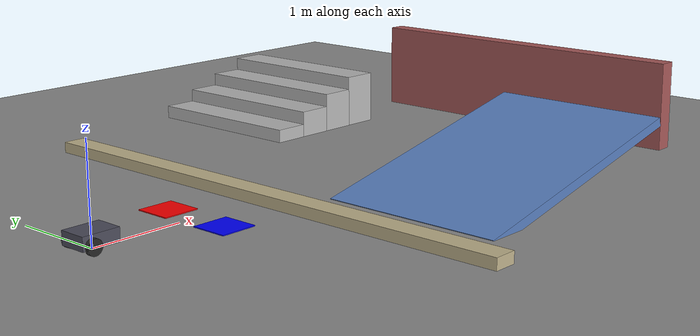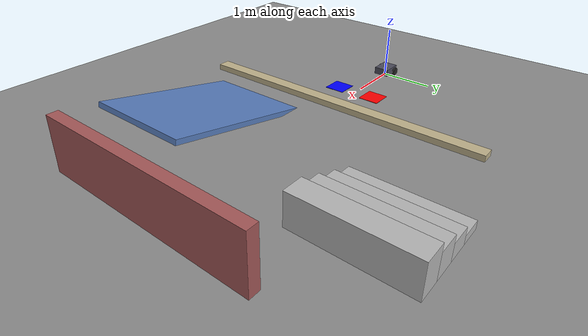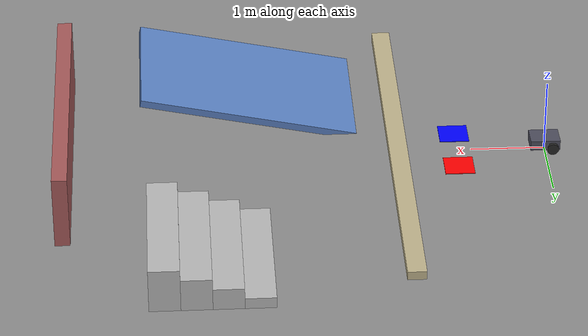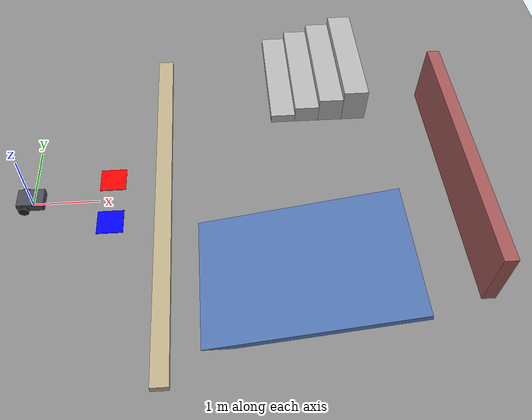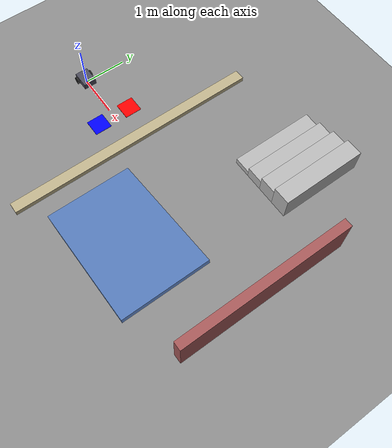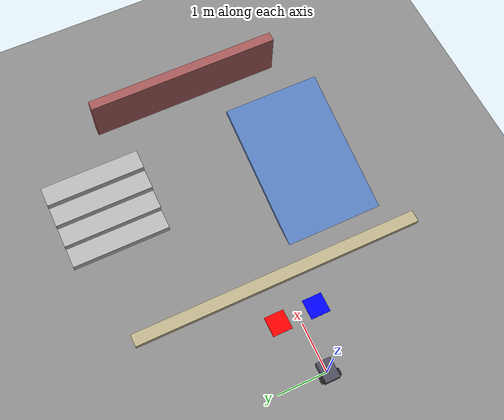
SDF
<?xml version="1.0" ?>
<sdf version="1.9">
  <world name="elevation_demo">

    <physics name="1ms" type="ignored">
      <max_step_size>0.001</max_step_size>
      <real_time_factor>1.0</real_time_factor>
    </physics>

    <plugin filename="ignition-gazebo-physics-system"
            name="ignition::gazebo::systems::Physics"/>
    <plugin filename="ignition-gazebo-user-commands-system"
            name="ignition::gazebo::systems::UserCommands"/>
    <plugin filename="ignition-gazebo-scene-broadcaster-system"
            name="ignition::gazebo::systems::SceneBroadcaster"/>
    <!-- Renders the lidar and the camera. Without this they stay silent. -->
    <plugin filename="ignition-gazebo-sensors-system"
            name="ignition::gazebo::systems::Sensors">
      <render_engine>ogre2</render_engine>
    </plugin>

    <light type="directional" name="sun">
      <cast_shadows>true</cast_shadows>
      <pose>0 0 10 0 0 0</pose>
      <diffuse>0.9 0.9 0.9 1</diffuse>
      <specular>0.2 0.2 0.2 1</specular>
      <direction>-0.5 0.3 -0.9</direction>
    </light>

    <model name="ground_plane">
      <static>true</static>
      <link name="link">
        <collision name="collision">
          <geometry><plane><normal>0 0 1</normal><size>60 60</size></plane></geometry>
        </collision>
        <visual name="visual">
          <geometry><plane><normal>0 0 1</normal><size>60 60</size></plane></geometry>
          <material>
            <ambient>0.45 0.45 0.45 1</ambient>
            <diffuse>0.55 0.55 0.55 1</diffuse>
          </material>
        </visual>
      </link>
    </model>

    <model name="ramp">
      <static>true</static>
      <pose>4.0 -1.5 0.2607 0 -0.2094 0</pose>
      <link name="link">
        <collision name="collision">
          <geometry><box><size>3.0 2.0 0.1</size></box></geometry>
        </collision>
        <visual name="visual">
          <geometry><box><size>3.0 2.0 0.1</size></box></geometry>
          <material>
            <ambient>0.3 0.4 0.6 1</ambient>
            <diffuse>0.35 0.5 0.75 1</diffuse>
          </material>
        </visual>
      </link>
    </model>

    <!-- Stair flight: four 0.15 m risers, a quadruped-scale step height. -->
    <model name="stairs">
      <static>true</static>
      <pose>4.0 2.5 0 0 0 0</pose>
      <link name="link">
        <collision name="s1"><pose>0.00 0 0.075 0 0 0</pose>
          <geometry><box><size>0.4 2.0 0.15</size></box></geometry></collision>
        <visual name="v1"><pose>0.00 0 0.075 0 0 0</pose>
          <geometry><box><size>0.4 2.0 0.15</size></box></geometry></visual>
        <collision name="s2"><pose>0.40 0 0.150 0 0 0</pose>
          <geometry><box><size>0.4 2.0 0.30</size></box></geometry></collision>
        <visual name="v2"><pose>0.40 0 0.150 0 0 0</pose>
          <geometry><box><size>0.4 2.0 0.30</size></box></geometry></visual>
        <collision name="s3"><pose>0.80 0 0.225 0 0 0</pose>
          <geometry><box><size>0.4 2.0 0.45</size></box></geometry></collision>
        <visual name="v3"><pose>0.80 0 0.225 0 0 0</pose>
          <geometry><box><size>0.4 2.0 0.45</size></box></geometry></visual>
        <collision name="s4"><pose>1.20 0 0.300 0 0 0</pose>
          <geometry><box><size>0.4 2.0 0.60</size></box></geometry></collision>
        <visual name="v4"><pose>1.20 0 0.300 0 0 0</pose>
          <geometry><box><size>0.4 2.0 0.60</size></box></geometry></visual>
      </link>
    </model>

    <!-- Curb: 0.12 m. The whole point of running at 0.05 m resolution. -->
    <model name="curb">
      <static>true</static>
      <pose>2.0 0 0.06 0 0 0</pose>
      <link name="link">
        <collision name="collision">
          <geometry><box><size>0.25 6.0 0.12</size></box></geometry>
        </collision>
        <visual name="visual">
          <geometry><box><size>0.25 6.0 0.12</size></box></geometry>
          <material>
            <ambient>0.6 0.55 0.45 1</ambient>
            <diffuse>0.75 0.7 0.55 1</diffuse>
          </material>
        </visual>
      </link>
    </model>

    <!-- A wall, so something clearly lethal shows up next to the terrain. -->
    <model name="wall">
      <static>true</static>
      <pose>6.5 0 0.5 0 0 0</pose>
      <link name="link">
        <collision name="collision">
          <geometry><box><size>0.2 4.0 1.0</size></box></geometry>
        </collision>
        <visual name="visual">
          <geometry><box><size>0.2 4.0 1.0</size></box></geometry>
          <material>
            <ambient>0.5 0.3 0.3 1</ambient>
            <diffuse>0.65 0.35 0.35 1</diffuse>
          </material>
        </visual>
      </link>
    </model>

    <model name="marker_red">
      <static>true</static>
      <pose>1.2 0.4 0.005 0 0 0</pose>
      <link name="link">
        <visual name="visual">
          <geometry><box><size>0.4 0.4 0.01</size></box></geometry>
          <material>
            <ambient>0.8 0.0 0.0 1</ambient>
            <diffuse>1.0 0.0 0.0 1</diffuse>
            <emissive>0.3 0.0 0.0 1</emissive>
          </material>
        </visual>
      </link>
    </model>

    <model name="marker_blue">
      <static>true</static>
      <pose>1.2 -0.4 0.005 0 0 0</pose>
      <link name="link">
        <visual name="visual">
          <geometry><box><size>0.4 0.4 0.01</size></box></geometry>
          <material>
            <ambient>0.0 0.0 0.8 1</ambient>
            <diffuse>0.0 0.0 1.0 1</diffuse>
            <emissive>0.0 0.0 0.3 1</emissive>
          </material>
        </visual>
      </link>
    </model>

    <!-- Differential-drive robot: 360 degree lidar for geometry, a forward
         colour camera for semantics. Same split as haechi. -->
    <model name="robot">
      <pose>0 0 0.12 0 0 0</pose>
      <self_collide>false</self_collide>

      <link name="base_link">
        <inertial>
          <mass>6.0</mass>
          <inertia><ixx>0.08</ixx><iyy>0.10</iyy><izz>0.12</izz>
                   <ixy>0</ixy><ixz>0</ixz><iyz>0</iyz></inertia>
        </inertial>
        <collision name="collision">
          <geometry><box><size>0.40 0.30 0.14</size></box></geometry>
        </collision>
        <visual name="visual">
          <geometry><box><size>0.40 0.30 0.14</size></box></geometry>
          <material>
            <ambient>0.2 0.2 0.24 1</ambient>
            <diffuse>0.3 0.3 0.36 1</diffuse>
          </material>
        </visual>

        <sensor name="lidar" type="gpu_lidar">
          <pose>0 0 0.25 0 0 0</pose>
          <update_rate>10</update_rate>
          <always_on>true</always_on>
          <topic>lidar</topic>
          <lidar>
            <scan>
              <horizontal>
                <samples>720</samples>
                <resolution>1</resolution>
                <min_angle>-3.14159</min_angle>
                <max_angle>3.14159</max_angle>
              </horizontal>
              <vertical>
                <samples>32</samples>
                <resolution>1</resolution>
                <min_angle>-0.5236</min_angle>
                <max_angle>0.1745</max_angle>
              </vertical>
            </scan>
            <range>
              <min>0.15</min>
              <max>20.0</max>
              <resolution>0.01</resolution>
            </range>
          </lidar>
        </sensor>

        <sensor name="color" type="camera">
          <pose>0.25 0 0.28 0 0.3491 0</pose>
          <update_rate>10</update_rate>
          <always_on>true</always_on>
          <topic>color_cam</topic>
          <camera>
            <horizontal_fov>1.2217</horizontal_fov>
            <image><width>320</width><height>240</height><format>R8G8B8</format></image>
            <clip><near>0.10</near><far>12.0</far></clip>
          </camera>
        </sensor>
      </link>

      <link name="left_wheel">
        <pose>-0.10 0.17 -0.04 -1.5707 0 0</pose>
        <inertial>
          <mass>0.6</mass>
          <inertia><ixx>0.002</ixx><iyy>0.002</iyy><izz>0.003</izz>
                   <ixy>0</ixy><ixz>0</ixz><iyz>0</iyz></inertia>
        </inertial>
        <collision name="collision">
          <geometry><cylinder><radius>0.08</radius><length>0.05</length></cylinder></geometry>
          <surface><friction><ode><mu>1.0</mu><mu2>1.0</mu2></ode></friction></surface>
        </collision>
        <visual name="visual">
          <geometry><cylinder><radius>0.08</radius><length>0.05</length></cylinder></geometry>
          <material><ambient>0.1 0.1 0.1 1</ambient><diffuse>0.15 0.15 0.15 1</diffuse></material>
        </visual>
      </link>

      <link name="right_wheel">
        <pose>-0.10 -0.17 -0.04 -1.5707 0 0</pose>
        <inertial>
          <mass>0.6</mass>
          <inertia><ixx>0.002</ixx><iyy>0.002</iyy><izz>0.003</izz>
                   <ixy>0</ixy><ixz>0</ixz><iyz>0</iyz></inertia>
        </inertial>
        <collision name="collision">
          <geometry><cylinder><radius>0.08</radius><length>0.05</length></cylinder></geometry>
          <surface><friction><ode><mu>1.0</mu><mu2>1.0</mu2></ode></friction></surface>
        </collision>
        <visual name="visual">
          <geometry><cylinder><radius>0.08</radius><length>0.05</length></cylinder></geometry>
          <material><ambient>0.1 0.1 0.1 1</ambient><diffuse>0.15 0.15 0.15 1</diffuse></material>
        </visual>
      </link>

      <link name="caster">
        <pose>0.15 0 -0.08 0 0 0</pose>
        <inertial>
          <mass>0.2</mass>
          <inertia><ixx>0.0002</ixx><iyy>0.0002</iyy><izz>0.0002</izz>
                   <ixy>0</ixy><ixz>0</ixz><iyz>0</iyz></inertia>
        </inertial>
        <collision name="collision">
          <geometry><sphere><radius>0.04</radius></sphere></geometry>
          <surface><friction><ode><mu>0.05</mu><mu2>0.05</mu2></ode></friction></surface>
        </collision>
        <visual name="visual">
          <geometry><sphere><radius>0.04</radius></sphere></geometry>
        </visual>
      </link>

      <joint name="left_wheel_joint" type="revolute">
        <parent>base_link</parent><child>left_wheel</child>
        <axis><xyz expressed_in="__model__">0 1 0</xyz>
          <limit><lower>-1e16</lower><upper>1e16</upper></limit></axis>
      </joint>
      <joint name="right_wheel_joint" type="revolute">
        <parent>base_link</parent><child>right_wheel</child>
        <axis><xyz expressed_in="__model__">0 1 0</xyz>
          <limit><lower>-1e16</lower><upper>1e16</upper></limit></axis>
      </joint>
      <joint name="caster_joint" type="ball">
        <parent>base_link</parent><child>caster</child>
      </joint>

      <plugin filename="ignition-gazebo-odometry-publisher-system"
              name="ignition::gazebo::systems::OdometryPublisher">
        <odom_frame>odom</odom_frame>
        <robot_base_frame>base_link</robot_base_frame>
        <dimensions>3</dimensions>
        <odom_publish_frequency>50</odom_publish_frequency>
        <odom_topic>/model/robot/odom3d</odom_topic>
        <tf_topic>/model/robot/pose3d</tf_topic>
      </plugin>

      <plugin filename="ignition-gazebo-diff-drive-system"
              name="ignition::gazebo::systems::DiffDrive">
        <left_joint>left_wheel_joint</left_joint>
        <right_joint>right_wheel_joint</right_joint>
        <wheel_separation>0.34</wheel_separation>
        <wheel_radius>0.08</wheel_radius>
        <odom_publish_frequency>50</odom_publish_frequency>
        <max_linear_acceleration>1.0</max_linear_acceleration>
        <topic>/model/robot/cmd_vel</topic>
        <odom_topic>/model/robot/odometry</odom_topic>
        <tf_topic>/model/robot/tf</tf_topic>
        <frame_id>odom</frame_id>
        <child_frame_id>base_link</child_frame_id>
      </plugin>
    </model>

  </world>
</sdf>
